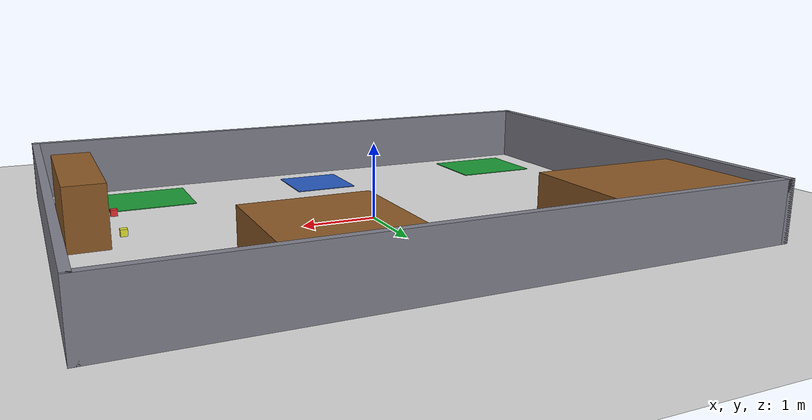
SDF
<?xml version="1.0" ?>
<sdf version="1.10">
  <world name="warehouse">

    <physics name="1ms" type="ignored">
      <max_step_size>0.001</max_step_size>
      <real_time_factor>1.0</real_time_factor>
    </physics>

    <plugin filename="gz-sim-physics-system" name="gz::sim::systems::Physics"/>
    <plugin filename="gz-sim-scene-broadcaster-system" name="gz::sim::systems::SceneBroadcaster"/>
    <plugin filename="gz-sim-user-commands-system" name="gz::sim::systems::UserCommands"/>
    <plugin filename="gz-sim-contact-system" name="gz::sim::systems::Contact"/>
    <plugin filename="gz-sim-sensors-system" name="gz::sim::systems::Sensors">
      <render_engine>ogre2</render_engine>
    </plugin>

    <scene>
      <ambient>0.6 0.6 0.6 1</ambient>
      <background>0.7 0.8 0.9 1</background>
    </scene>

    <light type="directional" name="sun">
      <cast_shadows>true</cast_shadows>
      <pose>0 0 10 0 0 0</pose>
      <diffuse>0.9 0.9 0.9 1</diffuse>
      <specular>0.2 0.2 0.2 1</specular>
      <direction>-0.4 0.3 -0.9</direction>
    </light>

    <model name="ground_plane">
      <static>true</static>
      <link name="link">
        <collision name="collision">
          <geometry><plane><normal>0 0 1</normal><size>50 50</size></plane></geometry>
          <surface><friction><ode><mu>1.0</mu><mu2>1.0</mu2></ode></friction></surface>
        </collision>
        <visual name="visual">
          <geometry><plane><normal>0 0 1</normal><size>50 50</size></plane></geometry>
          <material><ambient>0.85 0.85 0.85 1</ambient><diffuse>0.85 0.85 0.85 1</diffuse></material>
        </visual>
      </link>
    </model>

    <!-- ===================== Outer walls: 8 m (x) by 6 m (y) =====================
         Rectangular on purpose - a square room is rotationally ambiguous to a lidar. -->
    <model name="wall_north"><static>true</static><pose>0 3 0.4 0 0 0</pose><link name="l">
      <collision name="c"><geometry><box><size>8.1 0.1 0.8</size></box></geometry></collision>
      <visual name="v"><geometry><box><size>8.1 0.1 0.8</size></box></geometry>
        <material><ambient>0.5 0.5 0.55 1</ambient><diffuse>0.5 0.5 0.55 1</diffuse></material></visual>
    </link></model>

    <model name="wall_south"><static>true</static><pose>0 -3 0.4 0 0 0</pose><link name="l">
      <collision name="c"><geometry><box><size>8.1 0.1 0.8</size></box></geometry></collision>
      <visual name="v"><geometry><box><size>8.1 0.1 0.8</size></box></geometry>
        <material><ambient>0.5 0.5 0.55 1</ambient><diffuse>0.5 0.5 0.55 1</diffuse></material></visual>
    </link></model>

    <model name="wall_east"><static>true</static><pose>4 0 0.4 0 0 0</pose><link name="l">
      <collision name="c"><geometry><box><size>0.1 6.1 0.8</size></box></geometry></collision>
      <visual name="v"><geometry><box><size>0.1 6.1 0.8</size></box></geometry>
        <material><ambient>0.5 0.5 0.55 1</ambient><diffuse>0.5 0.5 0.55 1</diffuse></material></visual>
    </link></model>

    <model name="wall_west"><static>true</static><pose>-4 0 0.4 0 0 0</pose><link name="l">
      <collision name="c"><geometry><box><size>0.1 6.1 0.8</size></box></geometry></collision>
      <visual name="v"><geometry><box><size>0.1 6.1 0.8</size></box></geometry>
        <material><ambient>0.5 0.5 0.55 1</ambient><diffuse>0.5 0.5 0.55 1</diffuse></material></visual>
    </link></model>

    <!-- Shelf 1: long, north-west. Front face y=1.55, back face flush to the wall at 2.95. -->
    <model name="shelf_1"><static>true</static><pose>-2.5 2.25 0.4 0 0 0</pose><link name="l">
      <collision name="c"><geometry><box><size>2.0 1.4 0.8</size></box></geometry></collision>
      <visual name="v"><geometry><box><size>2.0 1.4 0.8</size></box></geometry>
        <material><ambient>0.55 0.35 0.15 1</ambient><diffuse>0.55 0.35 0.15 1</diffuse></material></visual>
    </link></model>

    <!-- Shelf 2: shorter, north-east. Same treatment. -->
    <model name="shelf_2"><static>true</static><pose>1.5 2.25 0.4 0 0 0</pose><link name="l">
      <collision name="c"><geometry><box><size>1.5 1.4 0.8</size></box></geometry></collision>
      <visual name="v"><geometry><box><size>1.5 1.4 0.8</size></box></geometry>
        <material><ambient>0.55 0.35 0.15 1</ambient><diffuse>0.55 0.35 0.15 1</diffuse></material></visual>
    </link></model>

    <model name="shelf_3"><static>true</static><pose>3.6 -1.0 0.4 0 0 0</pose><link name="l">
      <collision name="c"><geometry><box><size>0.5 2.0 0.8</size></box></geometry></collision>
      <visual name="v"><geometry><box><size>0.5 2.0 0.8</size></box></geometry>
        <material><ambient>0.55 0.35 0.15 1</ambient><diffuse>0.55 0.35 0.15 1</diffuse></material></visual>
    </link></model>

    <!-- delivery_1 - south-west bay -->
    <model name="delivery_1"><static>true</static><pose>-3.0 -2.2 0.005 0 0 0</pose><link name="l">
      <visual name="v"><geometry><box><size>1.2 1.0 0.01</size></box></geometry>
        <material><ambient>0.1 0.6 0.2 1</ambient><diffuse>0.1 0.6 0.2 1</diffuse></material></visual>
    </link></model>

    <!-- delivery_2 - south-east bay, 5.6 m away -->
    <model name="delivery_2"><static>true</static><pose>2.6 -2.2 0.005 0 0 0</pose><link name="l">
      <visual name="v"><geometry><box><size>1.2 1.0 0.01</size></box></geometry>
        <material><ambient>0.1 0.6 0.2 1</ambient><diffuse>0.1 0.6 0.2 1</diffuse></material></visual>
    </link></model>

    <!-- station_1 - home and charging point -->
    <model name="station_1"><static>true</static><pose>0.0 -2.2 0.005 0 0 0</pose><link name="l">
      <visual name="v"><geometry><box><size>0.9 0.9 0.01</size></box></geometry>
        <material><ambient>0.15 0.35 0.75 1</ambient><diffuse>0.15 0.35 0.75 1</diffuse></material></visual>
    </link></model>

    <!-- SKU-1001 bearing set,   shelf_1 west -->
    <model name="parcel_1">
      <pose>-3.0 1.35 0.05 0 0 0</pose>
      <link name="link">
        <collision name="c"><geometry><box><size>0.09 0.09 0.09</size></box></geometry>
          <surface><friction><ode><mu>0.02</mu><mu2>0.02</mu2></ode></friction></surface>
        </collision>
        <visual name="v"><geometry><box><size>0.09 0.09 0.09</size></box></geometry>
          <material><ambient>0.9 0.6 0.1 1</ambient><diffuse>0.9 0.6 0.1 1</diffuse></material></visual>
        <inertial><mass>0.2</mass>
          <inertia><ixx>0.00027</ixx><iyy>0.00027</iyy><izz>0.00027</izz>
                   <ixy>0</ixy><ixz>0</ixz><iyz>0</iyz></inertia></inertial>
      </link>
      <plugin filename="gz-sim-pose-publisher-system" name="gz::sim::systems::PosePublisher">
        <publish_link_pose>false</publish_link_pose>
        <publish_collision_pose>false</publish_collision_pose>
        <publish_visual_pose>false</publish_visual_pose>
        <publish_model_pose>true</publish_model_pose>
        <use_pose_vector_msg>false</use_pose_vector_msg>
        <static_publisher>false</static_publisher>
        <update_frequency>5</update_frequency>
      </plugin>
    </model>

    <!-- SKU-1002 seal kit,      shelf_1 east -->
    <model name="parcel_2">
      <pose>-2.0 1.35 0.05 0 0 0</pose>
      <link name="link">
        <collision name="c"><geometry><box><size>0.09 0.09 0.09</size></box></geometry>
          <surface><friction><ode><mu>0.02</mu><mu2>0.02</mu2></ode></friction></surface>
        </collision>
        <visual name="v"><geometry><box><size>0.09 0.09 0.09</size></box></geometry>
          <material><ambient>0.2 0.4 0.9 1</ambient><diffuse>0.2 0.4 0.9 1</diffuse></material></visual>
        <inertial><mass>0.2</mass>
          <inertia><ixx>0.00027</ixx><iyy>0.00027</iyy><izz>0.00027</izz>
                   <ixy>0</ixy><ixz>0</ixz><iyz>0</iyz></inertia></inertial>
      </link>
      <plugin filename="gz-sim-pose-publisher-system" name="gz::sim::systems::PosePublisher">
        <publish_link_pose>false</publish_link_pose>
        <publish_collision_pose>false</publish_collision_pose>
        <publish_visual_pose>false</publish_visual_pose>
        <publish_model_pose>true</publish_model_pose>
        <use_pose_vector_msg>false</use_pose_vector_msg>
        <static_publisher>false</static_publisher>
        <update_frequency>5</update_frequency>
      </plugin>
    </model>

    <!-- SKU-2001 servo drive,   shelf_2 west -->
    <model name="parcel_3">
      <pose>1.05 1.35 0.05 0 0 0</pose>
      <link name="link">
        <collision name="c"><geometry><box><size>0.09 0.09 0.09</size></box></geometry>
          <surface><friction><ode><mu>0.02</mu><mu2>0.02</mu2></ode></friction></surface>
        </collision>
        <visual name="v"><geometry><box><size>0.09 0.09 0.09</size></box></geometry>
          <material><ambient>0.7 0.2 0.8 1</ambient><diffuse>0.7 0.2 0.8 1</diffuse></material></visual>
        <inertial><mass>0.2</mass>
          <inertia><ixx>0.00027</ixx><iyy>0.00027</iyy><izz>0.00027</izz>
                   <ixy>0</ixy><ixz>0</ixz><iyz>0</iyz></inertia></inertial>
      </link>
      <plugin filename="gz-sim-pose-publisher-system" name="gz::sim::systems::PosePublisher">
        <publish_link_pose>false</publish_link_pose>
        <publish_collision_pose>false</publish_collision_pose>
        <publish_visual_pose>false</publish_visual_pose>
        <publish_model_pose>true</publish_model_pose>
        <use_pose_vector_msg>false</use_pose_vector_msg>
        <static_publisher>false</static_publisher>
        <update_frequency>5</update_frequency>
      </plugin>
    </model>

    <!-- SKU-2002 cable harness, shelf_2 east -->
    <model name="parcel_4">
      <pose>1.95 1.35 0.05 0 0 0</pose>
      <link name="link">
        <collision name="c"><geometry><box><size>0.09 0.09 0.09</size></box></geometry>
          <surface><friction><ode><mu>0.02</mu><mu2>0.02</mu2></ode></friction></surface>
        </collision>
        <visual name="v"><geometry><box><size>0.09 0.09 0.09</size></box></geometry>
          <material><ambient>0.2 0.7 0.4 1</ambient><diffuse>0.2 0.7 0.4 1</diffuse></material></visual>
        <inertial><mass>0.2</mass>
          <inertia><ixx>0.00027</ixx><iyy>0.00027</iyy><izz>0.00027</izz>
                   <ixy>0</ixy><ixz>0</ixz><iyz>0</iyz></inertia></inertial>
      </link>
      <plugin filename="gz-sim-pose-publisher-system" name="gz::sim::systems::PosePublisher">
        <publish_link_pose>false</publish_link_pose>
        <publish_collision_pose>false</publish_collision_pose>
        <publish_visual_pose>false</publish_visual_pose>
        <publish_model_pose>true</publish_model_pose>
        <use_pose_vector_msg>false</use_pose_vector_msg>
        <static_publisher>false</static_publisher>
        <update_frequency>5</update_frequency>
      </plugin>
    </model>

    <!-- SKU-3001 battery pack,  shelf_3 south -->
    <model name="parcel_5">
      <pose>3.15 -1.5 0.05 0 0 0</pose>
      <link name="link">
        <collision name="c"><geometry><box><size>0.09 0.09 0.09</size></box></geometry>
          <surface><friction><ode><mu>0.02</mu><mu2>0.02</mu2></ode></friction></surface>
        </collision>
        <visual name="v"><geometry><box><size>0.09 0.09 0.09</size></box></geometry>
          <material><ambient>0.9 0.2 0.2 1</ambient><diffuse>0.9 0.2 0.2 1</diffuse></material></visual>
        <inertial><mass>0.2</mass>
          <inertia><ixx>0.00027</ixx><iyy>0.00027</iyy><izz>0.00027</izz>
                   <ixy>0</ixy><ixz>0</ixz><iyz>0</iyz></inertia></inertial>
      </link>
      <plugin filename="gz-sim-pose-publisher-system" name="gz::sim::systems::PosePublisher">
        <publish_link_pose>false</publish_link_pose>
        <publish_collision_pose>false</publish_collision_pose>
        <publish_visual_pose>false</publish_visual_pose>
        <publish_model_pose>true</publish_model_pose>
        <use_pose_vector_msg>false</use_pose_vector_msg>
        <static_publisher>false</static_publisher>
        <update_frequency>5</update_frequency>
      </plugin>
    </model>

    <!-- SKU-3002 sensor module, shelf_3 north -->
    <model name="parcel_6">
      <pose>3.15 -0.5 0.05 0 0 0</pose>
      <link name="link">
        <collision name="c"><geometry><box><size>0.09 0.09 0.09</size></box></geometry>
          <surface><friction><ode><mu>0.02</mu><mu2>0.02</mu2></ode></friction></surface>
        </collision>
        <visual name="v"><geometry><box><size>0.09 0.09 0.09</size></box></geometry>
          <material><ambient>0.9 0.9 0.2 1</ambient><diffuse>0.9 0.9 0.2 1</diffuse></material></visual>
        <inertial><mass>0.2</mass>
          <inertia><ixx>0.00027</ixx><iyy>0.00027</iyy><izz>0.00027</izz>
                   <ixy>0</ixy><ixz>0</ixz><iyz>0</iyz></inertia></inertial>
      </link>
      <plugin filename="gz-sim-pose-publisher-system" name="gz::sim::systems::PosePublisher">
        <publish_link_pose>false</publish_link_pose>
        <publish_collision_pose>false</publish_collision_pose>
        <publish_visual_pose>false</publish_visual_pose>
        <publish_model_pose>true</publish_model_pose>
        <use_pose_vector_msg>false</use_pose_vector_msg>
        <static_publisher>false</static_publisher>
        <update_frequency>5</update_frequency>
      </plugin>
    </model>

  </world>
</sdf>
